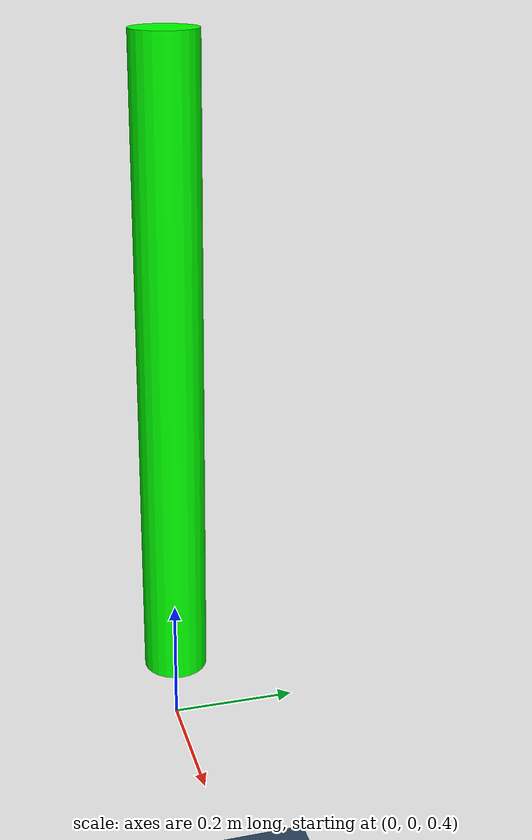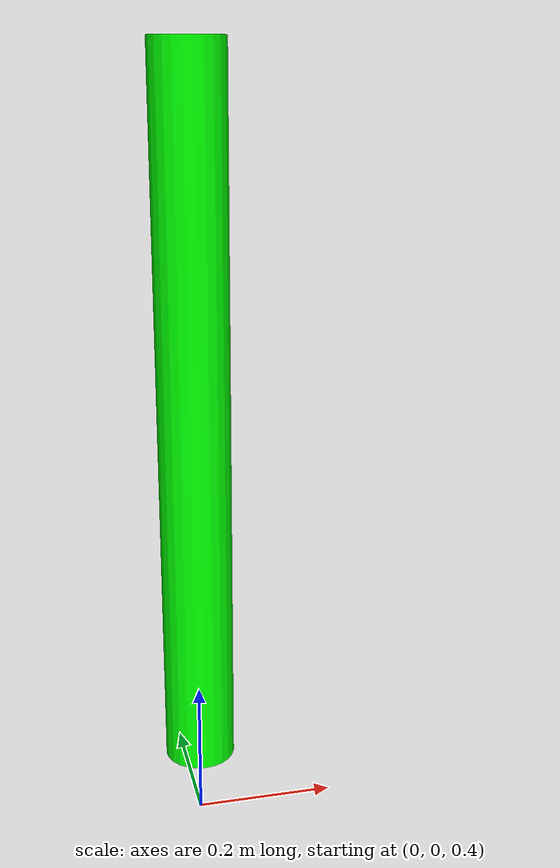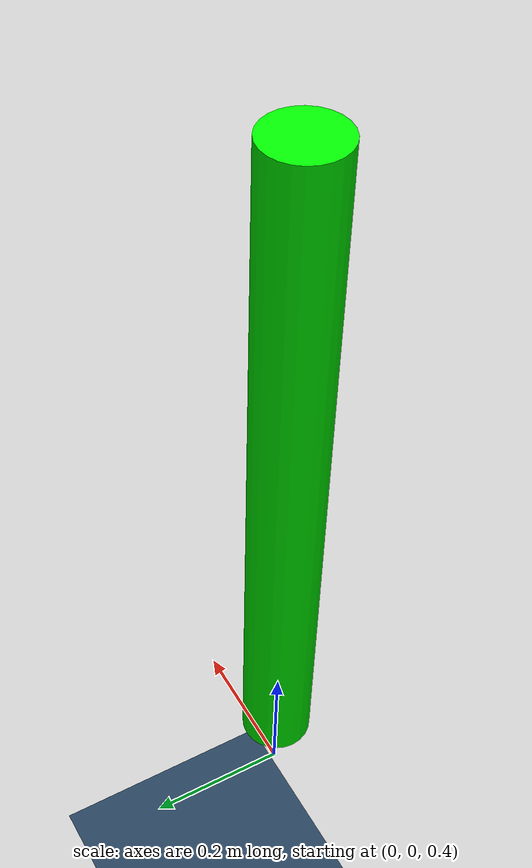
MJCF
<mujoco>
    <compiler angle="radian" />
    <visual>
        <headlight ambient=".5 .5 .5" />
    </visual>

    <asset>
        <material name="white" rgba="1 1 1 1" />
        <material name="green" rgba="0 1 0 1" />
        <material name="blue" rgba="0 0 1 1" />
        <material name="custom1" rgba=".5 .5 .5 1" />
        <texture name="grid" type="2d" builtin="checker" width="512" height="512" rgb1=".1 .2 .3" rgb2=".2 .3 .4"/>
        <material name="grid" texture="grid" texrepeat="1 1" texuniform="true" reflectance=".2"/>
    </asset>

    <worldbody>
        <light diffuse="0.5 0.5 0.5" pos="0 0 3" dir="0 0 -1" />
        <geom name="floor" size="10 1 .05" type="plane" material="grid" condim="3" />

        <!-- 这里是建模空间 -->

        <body pos="0 0 1">
            <joint type="free" />
            <geom type="cylinder" size="0.05 0.5" material="green" />
        </body>

    </worldbody>
</mujoco>
